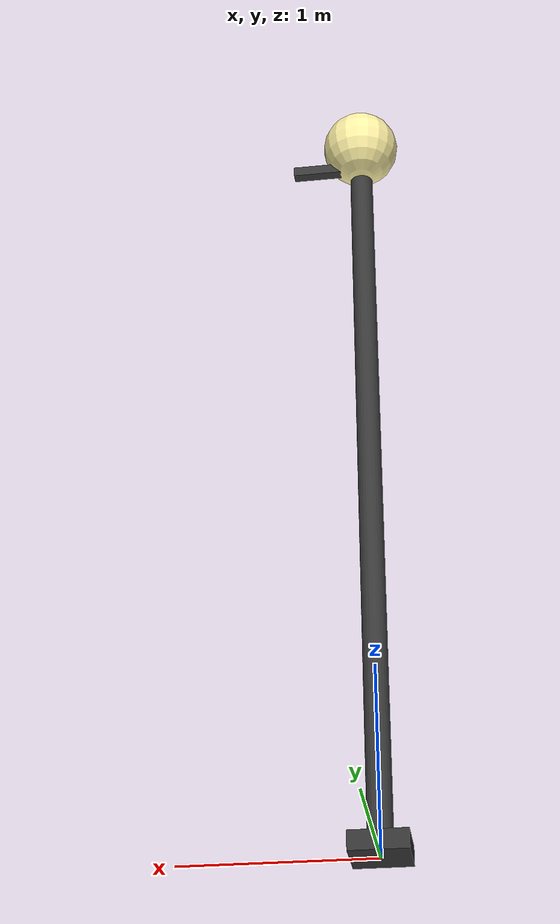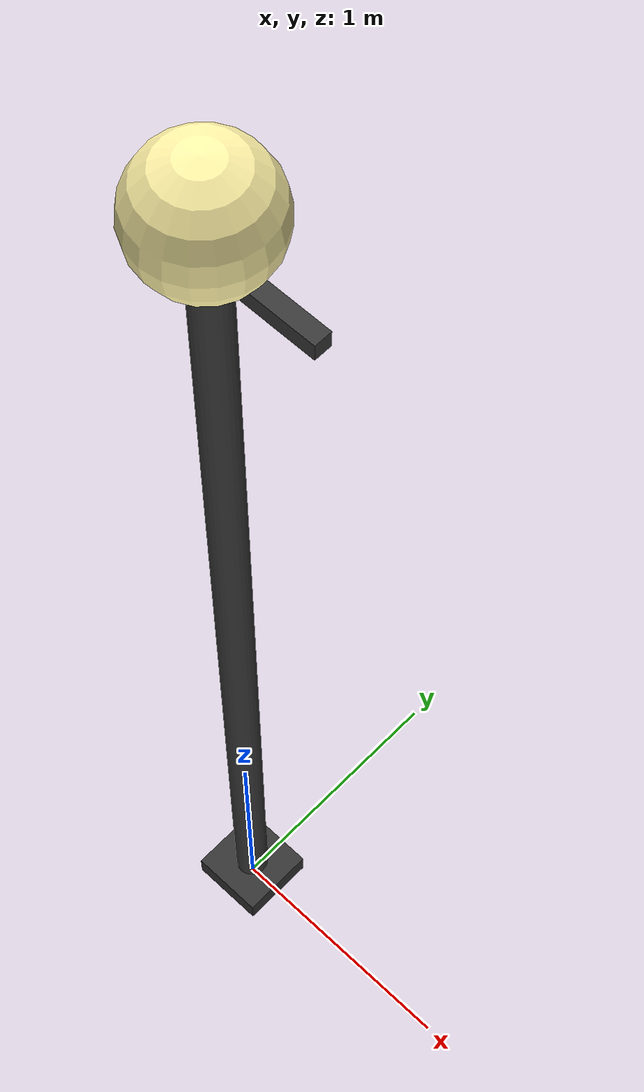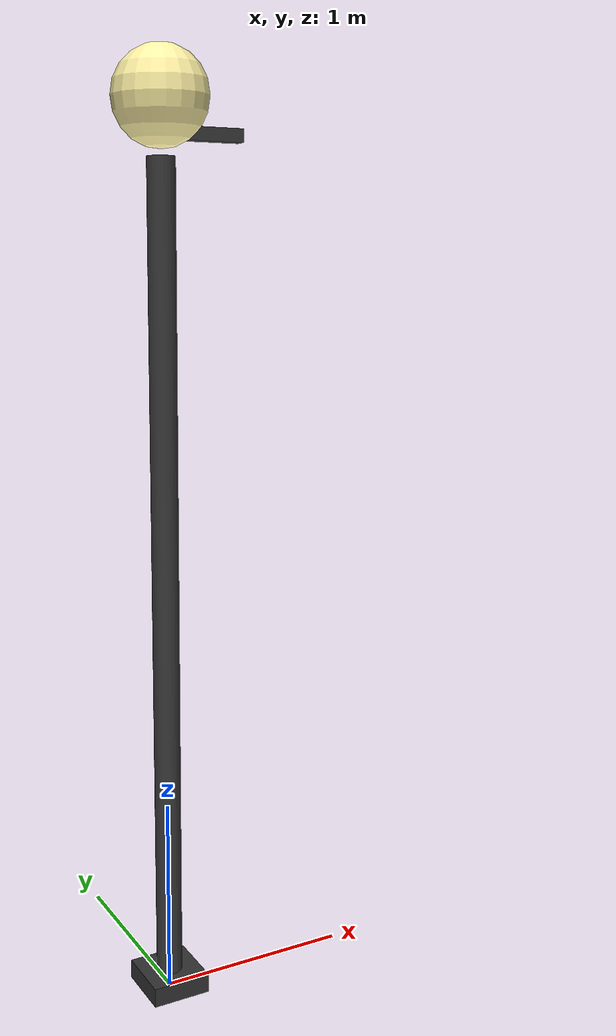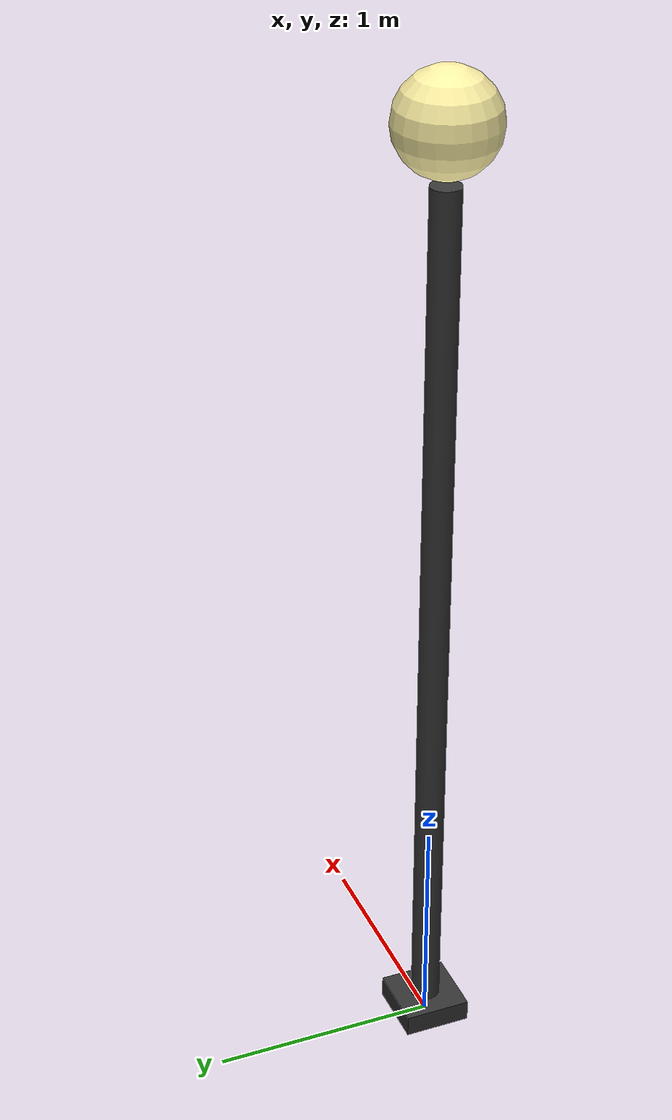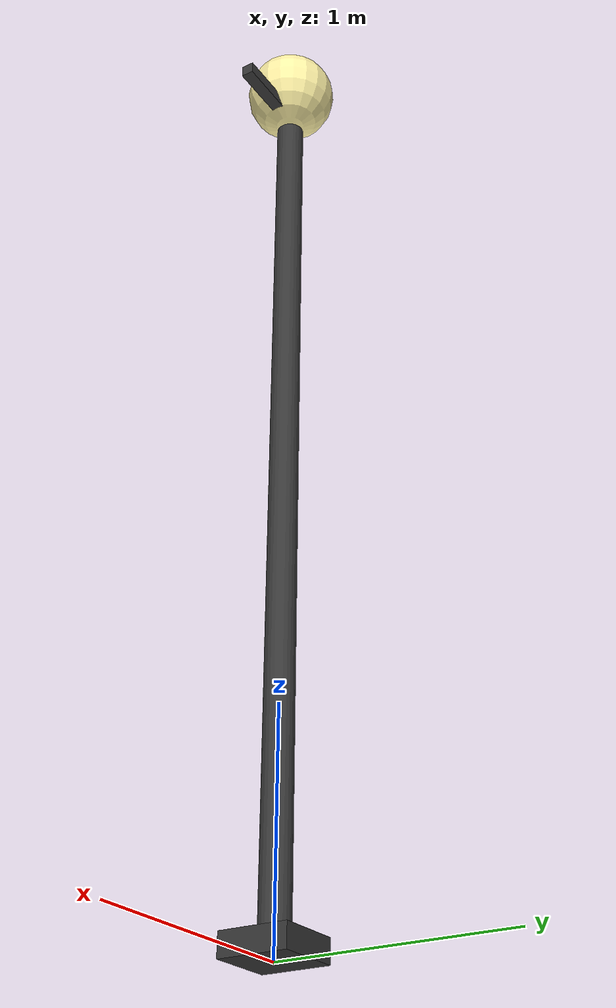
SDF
<?xml version="1.0" ?>
<!-- Street lamp: 4m dark metal pole with emissive yellow sphere head -->
<sdf version="1.6">
  <model name="street_lamp">
    <static>true</static>
    <link name="link">

      <!-- Pole collision -->
      <collision name="col_pole">
        <pose>0 0 2.0 0 0 0</pose>
        <geometry><cylinder><radius>0.07</radius><length>4.0</length></cylinder></geometry>
      </collision>

      <!-- Base plate -->
      <visual name="base">
        <pose>0 0 0.05 0 0 0</pose>
        <geometry><box><size>0.3 0.3 0.1</size></box></geometry>
        <material>
          <ambient>0.20 0.20 0.20 1</ambient>
          <diffuse>0.20 0.20 0.20 1</diffuse>
        </material>
      </visual>

      <!-- Pole -->
      <visual name="pole">
        <pose>0 0 2.1 0 0 0</pose>
        <geometry><cylinder><radius>0.065</radius><length>4.0</length></cylinder></geometry>
        <material>
          <ambient>0.22 0.22 0.22 1</ambient>
          <diffuse>0.22 0.22 0.22 1</diffuse>
          <specular>0.3 0.3 0.3 1</specular>
        </material>
      </visual>

      <!-- Arm bracket -->
      <visual name="arm">
        <pose>0.2 0 4.2 0 0 0</pose>
        <geometry><box><size>0.4 0.06 0.06</size></box></geometry>
        <material>
          <ambient>0.22 0.22 0.22 1</ambient>
          <diffuse>0.22 0.22 0.22 1</diffuse>
        </material>
      </visual>

      <!-- Lamp head (emissive sphere) -->
      <visual name="head">
        <pose>0 0 4.35 0 0 0</pose>
        <geometry><sphere><radius>0.22</radius></sphere></geometry>
        <material>
          <ambient>1.0 0.95 0.65 1</ambient>
          <diffuse>1.0 0.95 0.65 1</diffuse>
          <emissive>0.90 0.80 0.25 1</emissive>
          <specular>0.5 0.5 0.5 1</specular>
        </material>
      </visual>

    </link>
  </model>
</sdf>
